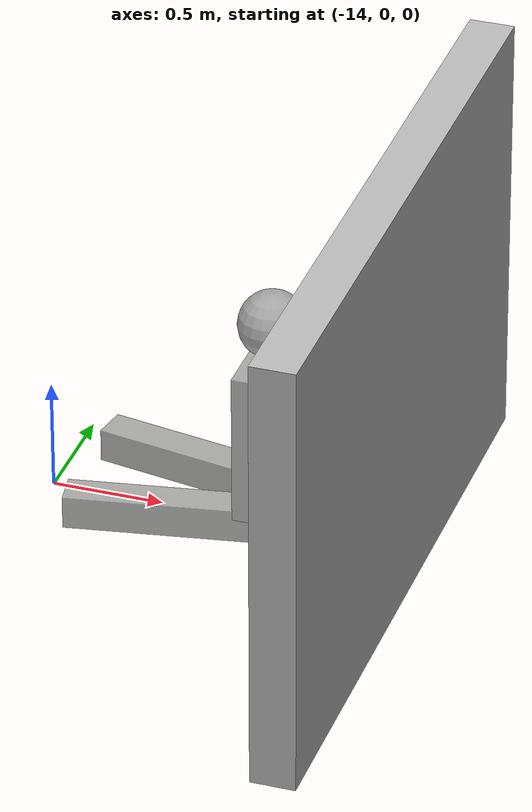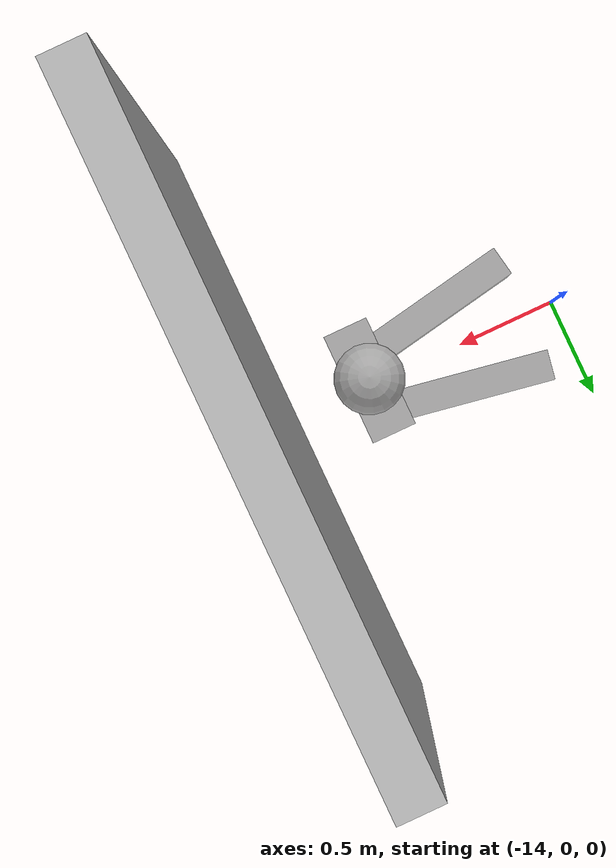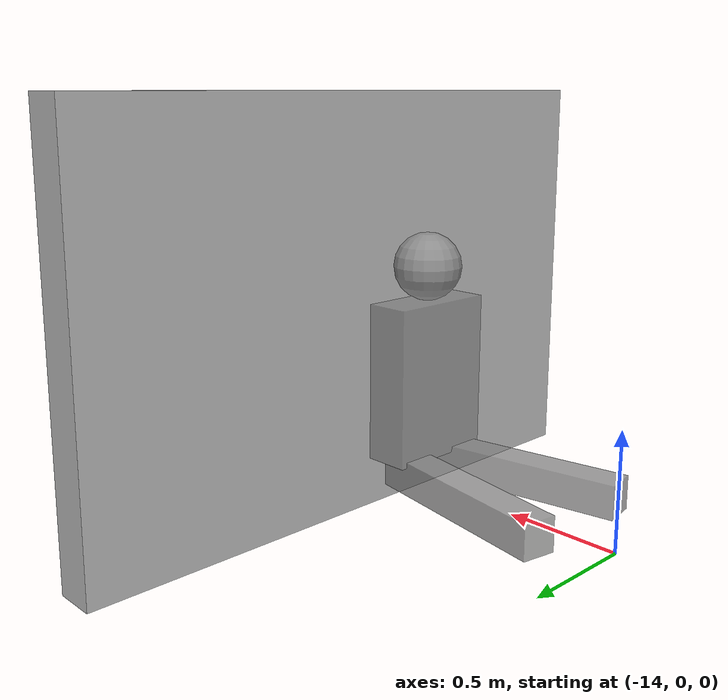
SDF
<sdf version="1.4">
 <world name="default">
  <scene><ambient>0.5 0.5 0.5 1</ambient><background>0.5 0.5 0.5 1</background><shadows>0</shadows></scene>
  <light name="directional_light_1" type="directional">
   <cast_shadows>0</cast_shadows>
   <pose>0 0 30 0.1 0.1 0</pose>
   <diffuse>1 1 1 1</diffuse>
   <specular>0.1 0.1 0.1 1</specular>
   <attenuation><range>300</range></attenuation>
   <direction>0.1 0.1 -1</direction>
  </light>
  <model name="wall_1">
   <static>true</static>
   <link name="wall_1_link">
    <pose>-12.5 0 0.75 0 0 1.5708</pose>
    <collision name="wall_1_collision"><geometry><box><size>3 0.2 2</size></box></geometry></collision>
    <visual name="wall_1_visual">
     <cast_shadows>false</cast_shadows>
     <geometry><box><size>3 0.2 2</size></box></geometry>
    </visual>
   </link>
   <damping>50</damping>
  </model>
  <model name="human_1">
   <include><uri>model://human</uri></include>
   <pose>-13 0 0.5 0 0 3.14159</pose>
   <damping>15.0</damping>
   <heartRate>80</heartRate>
   <respiratoryRate>20</respiratoryRate>
  </model>
  <spherical_coordinates>
   <surface_model>EARTH_WGS84</surface_model>
   <latitude_deg>0</latitude_deg>
   <longitude_deg>0</longitude_deg>
   <elevation>0</elevation>
   <heading_deg>0</heading_deg>
  </spherical_coordinates>
 </world>
</sdf>

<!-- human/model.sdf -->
<sdf version='1.7'>
  <model name='human'>
    <link name='body_link'>
      <inertial>
        <mass>1</mass>
        <inertia>
          <ixx>0</ixx>
          <ixy>0</ixy>
          <ixz>0</ixz>
          <iyy>0</iyy>
          <iyz>0</iyz>
          <izz>0</izz>
        </inertia>
        <pose>0 0 0 0 -0 0</pose>
      </inertial>
      <pose>0 0 0 0 -0 0</pose>
      <gravity>1</gravity>
      <self_collide>0</self_collide>
      <kinematic>0</kinematic>
      <enable_wind>0</enable_wind>
      <visual name='body_visual'>
        <pose>0 0 0 0 -0 0</pose>
        <geometry>
          <box>
            <size>0.2 0.5 0.7</size>
          </box>
        </geometry>
        <material>
          <lighting>1</lighting>
          <script>
            <uri>file://media/materials/scripts/gazebo.material</uri>
            <name>Gazebo/Grey</name>
          </script>
          <shader type='pixel'>
            <normal_map>__default__</normal_map>
          </shader>
          <ambient>0.3 0.3 0.3 1</ambient>
          <diffuse>0.7 0.7 0.7 1</diffuse>
          <specular>0.01 0.01 0.01 1</specular>
          <emissive>0 0 0 1</emissive>
        </material>
        <transparency>0.2</transparency>
        <cast_shadows>1</cast_shadows>
      </visual>
      <collision name='body_collision'>
        <laser_retro>0</laser_retro>
        <max_contacts>10</max_contacts>
        <pose>0 0 0 0 -0 0</pose>
        <geometry>
          <box>
            <size>0.2 0.5 0.7</size>
          </box>
        </geometry>
        <surface>
          <friction>
            <ode>
              <mu>1</mu>
              <mu2>1</mu2>
              <fdir1>0 0 0</fdir1>
              <slip1>0</slip1>
              <slip2>0</slip2>
            </ode>
            <torsional>
              <coefficient>1</coefficient>
              <patch_radius>0</patch_radius>
              <surface_radius>0</surface_radius>
              <use_patch_radius>1</use_patch_radius>
              <ode>
                <slip>0</slip>
              </ode>
            </torsional>
          </friction>
          <bounce>
            <restitution_coefficient>0</restitution_coefficient>
            <threshold>1e+06</threshold>
          </bounce>
          <contact>
            <collide_without_contact>0</collide_without_contact>
            <collide_without_contact_bitmask>1</collide_without_contact_bitmask>
            <collide_bitmask>1</collide_bitmask>
            <ode>
              <soft_cfm>0</soft_cfm>
              <soft_erp>0.2</soft_erp>
              <kp>1e+13</kp>
              <kd>1</kd>
              <max_vel>0.01</max_vel>
              <min_depth>0</min_depth>
            </ode>
            <bullet>
              <split_impulse>1</split_impulse>
              <split_impulse_penetration_threshold>-0.01</split_impulse_penetration_threshold>
              <soft_cfm>0</soft_cfm>
              <soft_erp>0.2</soft_erp>
              <kp>1e+13</kp>
              <kd>1</kd>
            </bullet>
          </contact>
        </surface>
      </collision>
    </link>
    <link name='head_link'>
      <inertial>
        <mass>1</mass>
        <inertia>
          <ixx>0</ixx>
          <ixy>0</ixy>
          <ixz>0</ixz>
          <iyy>0</iyy>
          <iyz>0</iyz>
          <izz>0</izz>
        </inertia>
        <pose>0 0 0 0 -0 0</pose>
      </inertial>
      <pose relative_to='body_link'>0 0 0.5 0 -0 0</pose>
      <gravity>1</gravity>
      <self_collide>0</self_collide>
      <kinematic>0</kinematic>
      <enable_wind>0</enable_wind>
      <visual name='head_visual'>
        <pose>0 0 0 0 -0 0</pose>
        <geometry>
          <sphere>
            <radius>0.15</radius>
          </sphere>
        </geometry>
        <material>
          <lighting>1</lighting>
          <script>
            <uri>file://media/materials/scripts/gazebo.material</uri>
            <name>Gazebo/Grey</name>
          </script>
          <shader type='pixel'>
            <normal_map>__default__</normal_map>
          </shader>
          <ambient>0.3 0.3 0.3 1</ambient>
          <diffuse>0.7 0.7 0.7 1</diffuse>
          <specular>0.01 0.01 0.01 1</specular>
          <emissive>0 0 0 1</emissive>
        </material>
        <transparency>0.2</transparency>
        <cast_shadows>1</cast_shadows>
      </visual>
      <collision name='head_collision'>
        <laser_retro>0</laser_retro>
        <max_contacts>10</max_contacts>
        <pose>0 0 0 0 -0 0</pose>
        <geometry>
          <sphere>
            <radius>0.15</radius>
          </sphere>
        </geometry>
        <surface>
          <friction>
            <ode>
              <mu>1</mu>
              <mu2>1</mu2>
              <fdir1>0 0 0</fdir1>
              <slip1>0</slip1>
              <slip2>0</slip2>
            </ode>
            <torsional>
              <coefficient>1</coefficient>
              <patch_radius>0</patch_radius>
              <surface_radius>0</surface_radius>
              <use_patch_radius>1</use_patch_radius>
              <ode>
                <slip>0</slip>
              </ode>
            </torsional>
          </friction>
          <bounce>
            <restitution_coefficient>0</restitution_coefficient>
            <threshold>1e+06</threshold>
          </bounce>
          <contact>
            <collide_without_contact>0</collide_without_contact>
            <collide_without_contact_bitmask>1</collide_without_contact_bitmask>
            <collide_bitmask>1</collide_bitmask>
            <ode>
              <soft_cfm>0</soft_cfm>
              <soft_erp>0.2</soft_erp>
              <kp>1e+13</kp>
              <kd>1</kd>
              <max_vel>0.01</max_vel>
              <min_depth>0</min_depth>
            </ode>
            <bullet>
              <split_impulse>1</split_impulse>
              <split_impulse_penetration_threshold>-0.01</split_impulse_penetration_threshold>
              <soft_cfm>0</soft_cfm>
              <soft_erp>0.2</soft_erp>
              <kp>1e+13</kp>
              <kd>1</kd>
            </bullet>
          </contact>
        </surface>
      </collision>
    </link>
    <link name='l_leg_link'>
      <inertial>
        <mass>1</mass>
        <inertia>
          <ixx>0</ixx>
          <ixy>0</ixy>
          <ixz>0</ixz>
          <iyy>0</iyy>
          <iyz>0</iyz>
          <izz>0</izz>
        </inertia>
        <pose>0 0 0 0 -0 0</pose>
      </inertial>
      <pose relative_to='body_link'>0.4 0.2 -0.4 0 1.5708 0.174533</pose>
      <gravity>1</gravity>
      <self_collide>0</self_collide>
      <kinematic>0</kinematic>
      <enable_wind>0</enable_wind>
      <visual name='l_leg_visual'>
        <pose>0 0 0 0 -0 0</pose>
        <geometry>
          <box>
            <size>0.15 0.15 0.9</size>
          </box>
        </geometry>
        <material>
          <lighting>1</lighting>
          <script>
            <uri>file://media/materials/scripts/gazebo.material</uri>
            <name>Gazebo/Grey</name>
          </script>
          <shader type='pixel'>
            <normal_map>__default__</normal_map>
          </shader>
          <ambient>0.3 0.3 0.3 1</ambient>
          <diffuse>0.7 0.7 0.7 1</diffuse>
          <specular>0.01 0.01 0.01 1</specular>
          <emissive>0 0 0 1</emissive>
        </material>
        <transparency>0.2</transparency>
        <cast_shadows>1</cast_shadows>
      </visual>
      <collision name='l_leg_collision'>
        <laser_retro>0</laser_retro>
        <max_contacts>10</max_contacts>
        <pose>0 0 0 0 -0 0</pose>
        <geometry>
          <box>
            <size>0.15 0.15 0.4</size>
          </box>
        </geometry>
        <surface>
          <friction>
            <ode>
              <mu>1</mu>
              <mu2>1</mu2>
              <fdir1>0 0 0</fdir1>
              <slip1>0</slip1>
              <slip2>0</slip2>
            </ode>
            <torsional>
              <coefficient>1</coefficient>
              <patch_radius>0</patch_radius>
              <surface_radius>0</surface_radius>
              <use_patch_radius>1</use_patch_radius>
              <ode>
                <slip>0</slip>
              </ode>
            </torsional>
          </friction>
          <bounce>
            <restitution_coefficient>0</restitution_coefficient>
            <threshold>1e+06</threshold>
          </bounce>
          <contact>
            <collide_without_contact>0</collide_without_contact>
            <collide_without_contact_bitmask>1</collide_without_contact_bitmask>
            <collide_bitmask>1</collide_bitmask>
            <ode>
              <soft_cfm>0</soft_cfm>
              <soft_erp>0.2</soft_erp>
              <kp>1e+13</kp>
              <kd>1</kd>
              <max_vel>0.01</max_vel>
              <min_depth>0</min_depth>
            </ode>
            <bullet>
              <split_impulse>1</split_impulse>
              <split_impulse_penetration_threshold>-0.01</split_impulse_penetration_threshold>
              <soft_cfm>0</soft_cfm>
              <soft_erp>0.2</soft_erp>
              <kp>1e+13</kp>
              <kd>1</kd>
            </bullet>
          </contact>
        </surface>
      </collision>
    </link>
    <link name='r_leg_link'>
      <inertial>
        <mass>1</mass>
        <inertia>
          <ixx>0</ixx>
          <ixy>0</ixy>
          <ixz>0</ixz>
          <iyy>0</iyy>
          <iyz>0</iyz>
          <izz>0</izz>
        </inertia>
        <pose>0 0 0 0 -0 0</pose>
      </inertial>
      <pose relative_to='body_link'>0.4 -0.2 -0.4 0 1.5708 -0.174533</pose>
      <gravity>1</gravity>
      <self_collide>0</self_collide>
      <kinematic>0</kinematic>
      <enable_wind>0</enable_wind>
      <visual name='r_leg_visual'>
        <pose>0 0 0 0 -0 0</pose>
        <geometry>
          <box>
            <size>0.15 0.15 0.9</size>
          </box>
        </geometry>
        <material>
          <lighting>1</lighting>
          <script>
            <uri>file://media/materials/scripts/gazebo.material</uri>
            <name>Gazebo/Grey</name>
          </script>
          <shader type='pixel'>
            <normal_map>__default__</normal_map>
          </shader>
          <ambient>0.3 0.3 0.3 1</ambient>
          <diffuse>0.7 0.7 0.7 1</diffuse>
          <specular>0.01 0.01 0.01 1</specular>
          <emissive>0 0 0 1</emissive>
        </material>
        <transparency>0.2</transparency>
        <cast_shadows>1</cast_shadows>
      </visual>
      <collision name='l_leg_collision'>
        <laser_retro>0</laser_retro>
        <max_contacts>10</max_contacts>
        <pose>0 0 0 0 -0 0</pose>
        <geometry>
          <box>
            <size>0.15 0.15 0.4</size>
          </box>
        </geometry>
        <surface>
          <friction>
            <ode>
              <mu>1</mu>
              <mu2>1</mu2>
              <fdir1>0 0 0</fdir1>
              <slip1>0</slip1>
              <slip2>0</slip2>
            </ode>
            <torsional>
              <coefficient>1</coefficient>
              <patch_radius>0</patch_radius>
              <surface_radius>0</surface_radius>
              <use_patch_radius>1</use_patch_radius>
              <ode>
                <slip>0</slip>
              </ode>
            </torsional>
          </friction>
          <bounce>
            <restitution_coefficient>0</restitution_coefficient>
            <threshold>1e+06</threshold>
          </bounce>
          <contact>
            <collide_without_contact>0</collide_without_contact>
            <collide_without_contact_bitmask>1</collide_without_contact_bitmask>
            <collide_bitmask>1</collide_bitmask>
            <ode>
              <soft_cfm>0</soft_cfm>
              <soft_erp>0.2</soft_erp>
              <kp>1e+13</kp>
              <kd>1</kd>
              <max_vel>0.01</max_vel>
              <min_depth>0</min_depth>
            </ode>
            <bullet>
              <split_impulse>1</split_impulse>
              <split_impulse_penetration_threshold>-0.01</split_impulse_penetration_threshold>
              <soft_cfm>0</soft_cfm>
              <soft_erp>0.2</soft_erp>
              <kp>1e+13</kp>
              <kd>1</kd>
            </bullet>
          </contact>
        </surface>
      </collision>
    </link>
    <joint name='head_body_joint' type='fixed'>
      <parent>body_link</parent>
      <child>head_link</child>
    </joint>
    <joint name='lleg_body_joint' type='fixed'>
      <parent>body_link</parent>
      <child>l_leg_link</child>
    </joint>
    <joint name='rleg_body_joint' type='fixed'>
      <parent>body_link</parent>
      <child>r_leg_link</child>
    </joint>
    <static>0</static>
    <allow_auto_disable>1</allow_auto_disable>

  </model>
</sdf>
